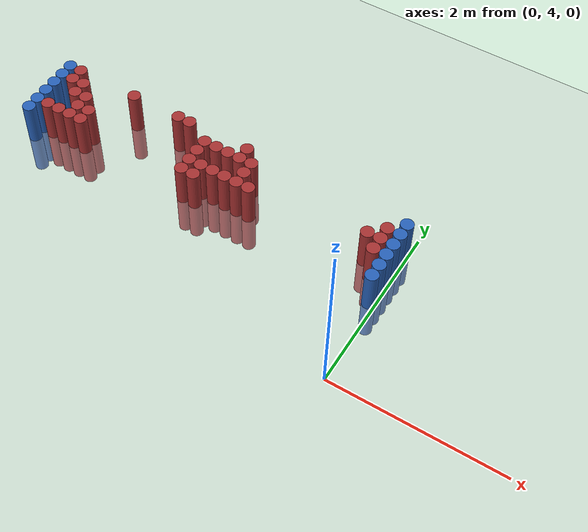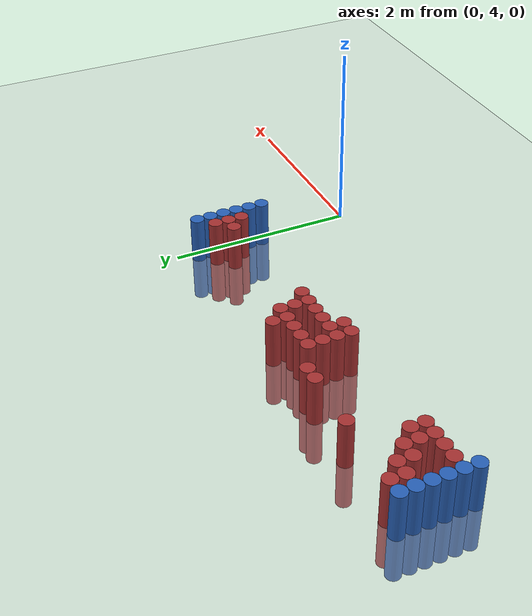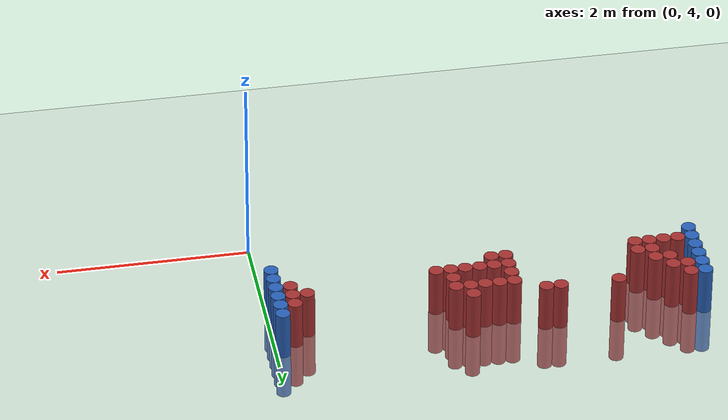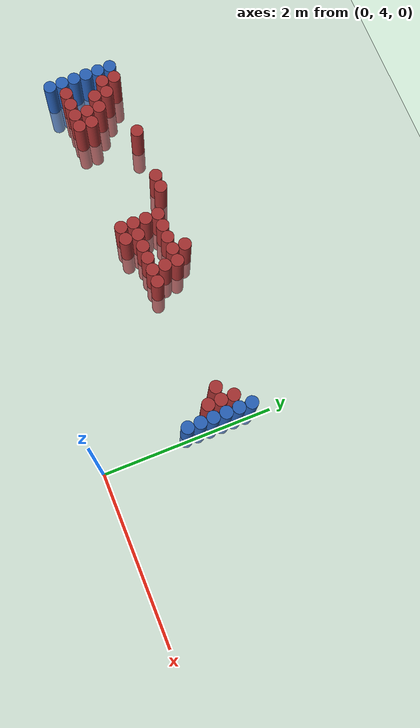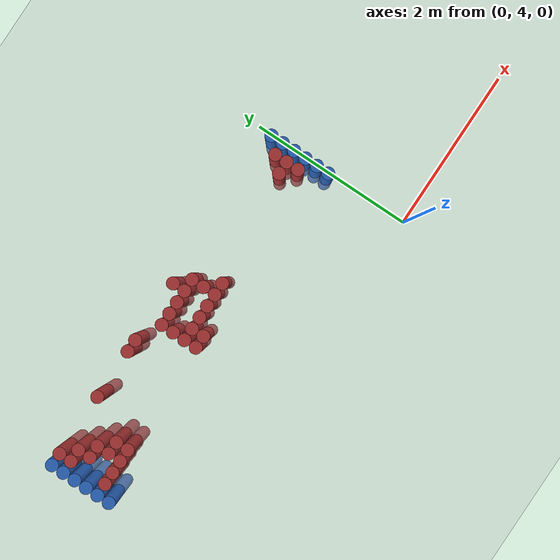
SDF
<sdf version="1.6">
 <world name="default">
  <model name="ground_plane">
   <static>1</static>
   <link name="link">
    <collision name="collision">
     <geometry><plane><normal>0 0 1</normal><size>100 100</size></plane></geometry>
     <surface><friction><ode><mu>100</mu><mu2>50</mu2></ode></friction></surface>
    </collision>
    <visual name="visual">
     <cast_shadows>0</cast_shadows>
     <geometry><plane><normal>0 0 1</normal><size>100 100</size></plane></geometry>
     <material>
      <script><uri>file://media/materials/scripts/gazebo.material</uri><name>Gazebo/Grey</name></script>
     </material>
    </visual>
   </link>
  </model>
  <model name="unit_cylinder_94">
   <static>1</static>
   <pose>-0.075000 5.025000 0.000000 0.000000 0.000000 0.000000</pose>
   <link name="link">
    <inertial>
     <mass>1</mass>
     <inertia><ixx>0.145833</ixx><ixy>0</ixy><ixz>0</ixz><iyy>0.145833</iyy><iyz>0</iyz><izz>0.125</izz></inertia>
    </inertial>
    <collision name="collision">
     <geometry><cylinder><radius>0.075000</radius><length>1</length></cylinder></geometry>
    </collision>
    <visual name="visual">
     <geometry><cylinder><radius>0.075000</radius><length>1</length></cylinder></geometry>
     <material>
      <ambient>0.152000 0.379000 0.720000 1</ambient>
      <diffuse>0.152000 0.379000 0.720000 1</diffuse>
     </material>
     <material>
      <script><name>Gazebo/Grey</name><uri>file://media/materials/scripts/gazebo.material</uri></script>
     </material>
    </visual>
   </link>
  </model>
  <model name="unit_cylinder_95">
   <static>1</static>
   <pose>-4.425000 5.025000 0.000000 0.000000 0.000000 0.000000</pose>
   <link name="link">
    <inertial>
     <mass>1</mass>
     <inertia><ixx>0.145833</ixx><ixy>0</ixy><ixz>0</ixz><iyy>0.145833</iyy><iyz>0</iyz><izz>0.125</izz></inertia>
    </inertial>
    <collision name="collision">
     <geometry><cylinder><radius>0.075000</radius><length>1</length></cylinder></geometry>
    </collision>
    <visual name="visual">
     <geometry><cylinder><radius>0.075000</radius><length>1</length></cylinder></geometry>
     <material>
      <ambient>0.152000 0.379000 0.720000 1</ambient>
      <diffuse>0.152000 0.379000 0.720000 1</diffuse>
     </material>
     <material>
      <script><name>Gazebo/Grey</name><uri>file://media/materials/scripts/gazebo.material</uri></script>
     </material>
    </visual>
   </link>
  </model>
  <model name="unit_cylinder_96">
   <static>1</static>
   <pose>-4.425000 5.175000 0.000000 0.000000 0.000000 0.000000</pose>
   <link name="link">
    <inertial>
     <mass>1</mass>
     <inertia><ixx>0.145833</ixx><ixy>0</ixy><ixz>0</ixz><iyy>0.145833</iyy><iyz>0</iyz><izz>0.125</izz></inertia>
    </inertial>
    <collision name="collision">
     <geometry><cylinder><radius>0.075000</radius><length>1</length></cylinder></geometry>
    </collision>
    <visual name="visual">
     <geometry><cylinder><radius>0.075000</radius><length>1</length></cylinder></geometry>
     <material>
      <ambient>0.152000 0.379000 0.720000 1</ambient>
      <diffuse>0.152000 0.379000 0.720000 1</diffuse>
     </material>
     <material>
      <script><name>Gazebo/Grey</name><uri>file://media/materials/scripts/gazebo.material</uri></script>
     </material>
    </visual>
   </link>
  </model>
  <model name="unit_cylinder_97">
   <static>1</static>
   <pose>-4.425000 5.325000 0.000000 0.000000 0.000000 0.000000</pose>
   <link name="link">
    <inertial>
     <mass>1</mass>
     <inertia><ixx>0.145833</ixx><ixy>0</ixy><ixz>0</ixz><iyy>0.145833</iyy><iyz>0</iyz><izz>0.125</izz></inertia>
    </inertial>
    <collision name="collision">
     <geometry><cylinder><radius>0.075000</radius><length>1</length></cylinder></geometry>
    </collision>
    <visual name="visual">
     <geometry><cylinder><radius>0.075000</radius><length>1</length></cylinder></geometry>
     <material>
      <ambient>0.152000 0.379000 0.720000 1</ambient>
      <diffuse>0.152000 0.379000 0.720000 1</diffuse>
     </material>
     <material>
      <script><name>Gazebo/Grey</name><uri>file://media/materials/scripts/gazebo.material</uri></script>
     </material>
    </visual>
   </link>
  </model>
  <model name="unit_cylinder_98">
   <static>1</static>
   <pose>-4.425000 5.475000 0.000000 0.000000 0.000000 0.000000</pose>
   <link name="link">
    <inertial>
     <mass>1</mass>
     <inertia><ixx>0.145833</ixx><ixy>0</ixy><ixz>0</ixz><iyy>0.145833</iyy><iyz>0</iyz><izz>0.125</izz></inertia>
    </inertial>
    <collision name="collision">
     <geometry><cylinder><radius>0.075000</radius><length>1</length></cylinder></geometry>
    </collision>
    <visual name="visual">
     <geometry><cylinder><radius>0.075000</radius><length>1</length></cylinder></geometry>
     <material>
      <ambient>0.152000 0.379000 0.720000 1</ambient>
      <diffuse>0.152000 0.379000 0.720000 1</diffuse>
     </material>
     <material>
      <script><name>Gazebo/Grey</name><uri>file://media/materials/scripts/gazebo.material</uri></script>
     </material>
    </visual>
   </link>
  </model>
  <model name="unit_cylinder_99">
   <static>1</static>
   <pose>-4.425000 5.625000 0.000000 0.000000 0.000000 0.000000</pose>
   <link name="link">
    <inertial>
     <mass>1</mass>
     <inertia><ixx>0.145833</ixx><ixy>0</ixy><ixz>0</ixz><iyy>0.145833</iyy><iyz>0</iyz><izz>0.125</izz></inertia>
    </inertial>
    <collision name="collision">
     <geometry><cylinder><radius>0.075000</radius><length>1</length></cylinder></geometry>
    </collision>
    <visual name="visual">
     <geometry><cylinder><radius>0.075000</radius><length>1</length></cylinder></geometry>
     <material>
      <ambient>0.152000 0.379000 0.720000 1</ambient>
      <diffuse>0.152000 0.379000 0.720000 1</diffuse>
     </material>
     <material>
      <script><name>Gazebo/Grey</name><uri>file://media/materials/scripts/gazebo.material</uri></script>
     </material>
    </visual>
   </link>
  </model>
  <model name="unit_cylinder_100">
   <static>1</static>
   <pose>-4.425000 5.775000 0.000000 0.000000 0.000000 0.000000</pose>
   <link name="link">
    <inertial>
     <mass>1</mass>
     <inertia><ixx>0.145833</ixx><ixy>0</ixy><ixz>0</ixz><iyy>0.145833</iyy><iyz>0</iyz><izz>0.125</izz></inertia>
    </inertial>
    <collision name="collision">
     <geometry><cylinder><radius>0.075000</radius><length>1</length></cylinder></geometry>
    </collision>
    <visual name="visual">
     <geometry><cylinder><radius>0.075000</radius><length>1</length></cylinder></geometry>
     <material>
      <ambient>0.152000 0.379000 0.720000 1</ambient>
      <diffuse>0.152000 0.379000 0.720000 1</diffuse>
     </material>
     <material>
      <script><name>Gazebo/Grey</name><uri>file://media/materials/scripts/gazebo.material</uri></script>
     </material>
    </visual>
   </link>
  </model>
  <model name="unit_cylinder_126">
   <static>1</static>
   <pose>-4.275000 5.175000 0.000000 0.000000 0.000000 0.000000</pose>
   <link name="link">
    <inertial>
     <mass>1</mass>
     <inertia><ixx>0.145833</ixx><ixy>0</ixy><ixz>0</ixz><iyy>0.145833</iyy><iyz>0</iyz><izz>0.125</izz></inertia>
    </inertial>
    <collision name="collision">
     <geometry><cylinder><radius>0.075000</radius><length>1</length></cylinder></geometry>
    </collision>
    <visual name="visual">
     <geometry><cylinder><radius>0.075000</radius><length>1</length></cylinder></geometry>
     <material>
      <ambient>0.648000 0.192000 0.192000 1</ambient>
      <diffuse>0.648000 0.192000 0.192000 1</diffuse>
     </material>
     <material>
      <script><name>Gazebo/Grey</name><uri>file://media/materials/scripts/gazebo.material</uri></script>
     </material>
    </visual>
   </link>
  </model>
  <model name="unit_cylinder_127">
   <static>1</static>
   <pose>-4.275000 5.625000 0.000000 0.000000 0.000000 0.000000</pose>
   <link name="link">
    <inertial>
     <mass>1</mass>
     <inertia><ixx>0.145833</ixx><ixy>0</ixy><ixz>0</ixz><iyy>0.145833</iyy><iyz>0</iyz><izz>0.125</izz></inertia>
    </inertial>
    <collision name="collision">
     <geometry><cylinder><radius>0.075000</radius><length>1</length></cylinder></geometry>
    </collision>
    <visual name="visual">
     <geometry><cylinder><radius>0.075000</radius><length>1</length></cylinder></geometry>
     <material>
      <ambient>0.648000 0.192000 0.192000 1</ambient>
      <diffuse>0.648000 0.192000 0.192000 1</diffuse>
     </material>
     <material>
      <script><name>Gazebo/Grey</name><uri>file://media/materials/scripts/gazebo.material</uri></script>
     </material>
    </visual>
   </link>
  </model>
  <model name="unit_cylinder_128">
   <static>1</static>
   <pose>-4.275000 5.775000 0.000000 0.000000 0.000000 0.000000</pose>
   <link name="link">
    <inertial>
     <mass>1</mass>
     <inertia><ixx>0.145833</ixx><ixy>0</ixy><ixz>0</ixz><iyy>0.145833</iyy><iyz>0</iyz><izz>0.125</izz></inertia>
    </inertial>
    <collision name="collision">
     <geometry><cylinder><radius>0.075000</radius><length>1</length></cylinder></geometry>
    </collision>
    <visual name="visual">
     <geometry><cylinder><radius>0.075000</radius><length>1</length></cylinder></geometry>
     <material>
      <ambient>0.648000 0.192000 0.192000 1</ambient>
      <diffuse>0.648000 0.192000 0.192000 1</diffuse>
     </material>
     <material>
      <script><name>Gazebo/Grey</name><uri>file://media/materials/scripts/gazebo.material</uri></script>
     </material>
    </visual>
   </link>
  </model>
  <model name="unit_cylinder_133">
   <static>1</static>
   <pose>-4.125000 5.175000 0.000000 0.000000 0.000000 0.000000</pose>
   <link name="link">
    <inertial>
     <mass>1</mass>
     <inertia><ixx>0.145833</ixx><ixy>0</ixy><ixz>0</ixz><iyy>0.145833</iyy><iyz>0</iyz><izz>0.125</izz></inertia>
    </inertial>
    <collision name="collision">
     <geometry><cylinder><radius>0.075000</radius><length>1</length></cylinder></geometry>
    </collision>
    <visual name="visual">
     <geometry><cylinder><radius>0.075000</radius><length>1</length></cylinder></geometry>
     <material>
      <ambient>0.648000 0.192000 0.192000 1</ambient>
      <diffuse>0.648000 0.192000 0.192000 1</diffuse>
     </material>
     <material>
      <script><name>Gazebo/Grey</name><uri>file://media/materials/scripts/gazebo.material</uri></script>
     </material>
    </visual>
   </link>
  </model>
  <model name="unit_cylinder_134">
   <static>1</static>
   <pose>-4.125000 5.475000 0.000000 0.000000 0.000000 0.000000</pose>
   <link name="link">
    <inertial>
     <mass>1</mass>
     <inertia><ixx>0.145833</ixx><ixy>0</ixy><ixz>0</ixz><iyy>0.145833</iyy><iyz>0</iyz><izz>0.125</izz></inertia>
    </inertial>
    <collision name="collision">
     <geometry><cylinder><radius>0.075000</radius><length>1</length></cylinder></geometry>
    </collision>
    <visual name="visual">
     <geometry><cylinder><radius>0.075000</radius><length>1</length></cylinder></geometry>
     <material>
      <ambient>0.648000 0.192000 0.192000 1</ambient>
      <diffuse>0.648000 0.192000 0.192000 1</diffuse>
     </material>
     <material>
      <script><name>Gazebo/Grey</name><uri>file://media/materials/scripts/gazebo.material</uri></script>
     </material>
    </visual>
   </link>
  </model>
  <model name="unit_cylinder_135">
   <static>1</static>
   <pose>-4.125000 5.625000 0.000000 0.000000 0.000000 0.000000</pose>
   <link name="link">
    <inertial>
     <mass>1</mass>
     <inertia><ixx>0.145833</ixx><ixy>0</ixy><ixz>0</ixz><iyy>0.145833</iyy><iyz>0</iyz><izz>0.125</izz></inertia>
    </inertial>
    <collision name="collision">
     <geometry><cylinder><radius>0.075000</radius><length>1</length></cylinder></geometry>
    </collision>
    <visual name="visual">
     <geometry><cylinder><radius>0.075000</radius><length>1</length></cylinder></geometry>
     <material>
      <ambient>0.648000 0.192000 0.192000 1</ambient>
      <diffuse>0.648000 0.192000 0.192000 1</diffuse>
     </material>
     <material>
      <script><name>Gazebo/Grey</name><uri>file://media/materials/scripts/gazebo.material</uri></script>
     </material>
    </visual>
   </link>
  </model>
  <model name="unit_cylinder_137">
   <static>1</static>
   <pose>-3.975000 5.175000 0.000000 0.000000 0.000000 0.000000</pose>
   <link name="link">
    <inertial>
     <mass>1</mass>
     <inertia><ixx>0.145833</ixx><ixy>0</ixy><ixz>0</ixz><iyy>0.145833</iyy><iyz>0</iyz><izz>0.125</izz></inertia>
    </inertial>
    <collision name="collision">
     <geometry><cylinder><radius>0.075000</radius><length>1</length></cylinder></geometry>
    </collision>
    <visual name="visual">
     <geometry><cylinder><radius>0.075000</radius><length>1</length></cylinder></geometry>
     <material>
      <ambient>0.648000 0.192000 0.192000 1</ambient>
      <diffuse>0.648000 0.192000 0.192000 1</diffuse>
     </material>
     <material>
      <script><name>Gazebo/Grey</name><uri>file://media/materials/scripts/gazebo.material</uri></script>
     </material>
    </visual>
   </link>
  </model>
  <model name="unit_cylinder_138">
   <static>1</static>
   <pose>-3.975000 5.325000 0.000000 0.000000 0.000000 0.000000</pose>
   <link name="link">
    <inertial>
     <mass>1</mass>
     <inertia><ixx>0.145833</ixx><ixy>0</ixy><ixz>0</ixz><iyy>0.145833</iyy><iyz>0</iyz><izz>0.125</izz></inertia>
    </inertial>
    <collision name="collision">
     <geometry><cylinder><radius>0.075000</radius><length>1</length></cylinder></geometry>
    </collision>
    <visual name="visual">
     <geometry><cylinder><radius>0.075000</radius><length>1</length></cylinder></geometry>
     <material>
      <ambient>0.648000 0.192000 0.192000 1</ambient>
      <diffuse>0.648000 0.192000 0.192000 1</diffuse>
     </material>
     <material>
      <script><name>Gazebo/Grey</name><uri>file://media/materials/scripts/gazebo.material</uri></script>
     </material>
    </visual>
   </link>
  </model>
  <model name="unit_cylinder_139">
   <static>1</static>
   <pose>-3.975000 5.475000 0.000000 0.000000 0.000000 0.000000</pose>
   <link name="link">
    <inertial>
     <mass>1</mass>
     <inertia><ixx>0.145833</ixx><ixy>0</ixy><ixz>0</ixz><iyy>0.145833</iyy><iyz>0</iyz><izz>0.125</izz></inertia>
    </inertial>
    <collision name="collision">
     <geometry><cylinder><radius>0.075000</radius><length>1</length></cylinder></geometry>
    </collision>
    <visual name="visual">
     <geometry><cylinder><radius>0.075000</radius><length>1</length></cylinder></geometry>
     <material>
      <ambient>0.648000 0.192000 0.192000 1</ambient>
      <diffuse>0.648000 0.192000 0.192000 1</diffuse>
     </material>
     <material>
      <script><name>Gazebo/Grey</name><uri>file://media/materials/scripts/gazebo.material</uri></script>
     </material>
    </visual>
   </link>
  </model>
  <model name="unit_cylinder_143">
   <static>1</static>
   <pose>-3.825000 5.175000 0.000000 0.000000 0.000000 0.000000</pose>
   <link name="link">
    <inertial>
     <mass>1</mass>
     <inertia><ixx>0.145833</ixx><ixy>0</ixy><ixz>0</ixz><iyy>0.145833</iyy><iyz>0</iyz><izz>0.125</izz></inertia>
    </inertial>
    <collision name="collision">
     <geometry><cylinder><radius>0.075000</radius><length>1</length></cylinder></geometry>
    </collision>
    <visual name="visual">
     <geometry><cylinder><radius>0.075000</radius><length>1</length></cylinder></geometry>
     <material>
      <ambient>0.648000 0.192000 0.192000 1</ambient>
      <diffuse>0.648000 0.192000 0.192000 1</diffuse>
     </material>
     <material>
      <script><name>Gazebo/Grey</name><uri>file://media/materials/scripts/gazebo.material</uri></script>
     </material>
    </visual>
   </link>
  </model>
  <model name="unit_cylinder_144">
   <static>1</static>
   <pose>-3.825000 5.325000 0.000000 0.000000 0.000000 0.000000</pose>
   <link name="link">
    <inertial>
     <mass>1</mass>
     <inertia><ixx>0.145833</ixx><ixy>0</ixy><ixz>0</ixz><iyy>0.145833</iyy><iyz>0</iyz><izz>0.125</izz></inertia>
    </inertial>
    <collision name="collision">
     <geometry><cylinder><radius>0.075000</radius><length>1</length></cylinder></geometry>
    </collision>
    <visual name="visual">
     <geometry><cylinder><radius>0.075000</radius><length>1</length></cylinder></geometry>
     <material>
      <ambient>0.648000 0.192000 0.192000 1</ambient>
      <diffuse>0.648000 0.192000 0.192000 1</diffuse>
     </material>
     <material>
      <script><name>Gazebo/Grey</name><uri>file://media/materials/scripts/gazebo.material</uri></script>
     </material>
    </visual>
   </link>
  </model>
  <model name="unit_cylinder_145">
   <static>1</static>
   <pose>-3.525000 5.775000 0.000000 0.000000 0.000000 0.000000</pose>
   <link name="link">
    <inertial>
     <mass>1</mass>
     <inertia><ixx>0.145833</ixx><ixy>0</ixy><ixz>0</ixz><iyy>0.145833</iyy><iyz>0</iyz><izz>0.125</izz></inertia>
    </inertial>
    <collision name="collision">
     <geometry><cylinder><radius>0.075000</radius><length>1</length></cylinder></geometry>
    </collision>
    <visual name="visual">
     <geometry><cylinder><radius>0.075000</radius><length>1</length></cylinder></geometry>
     <material>
      <ambient>0.648000 0.192000 0.192000 1</ambient>
      <diffuse>0.648000 0.192000 0.192000 1</diffuse>
     </material>
     <material>
      <script><name>Gazebo/Grey</name><uri>file://media/materials/scripts/gazebo.material</uri></script>
     </material>
    </visual>
   </link>
  </model>
  <model name="unit_cylinder_161">
   <static>1</static>
   <pose>-2.925000 5.775000 0.000000 0.000000 0.000000 0.000000</pose>
   <link name="link">
    <inertial>
     <mass>1</mass>
     <inertia><ixx>0.145833</ixx><ixy>0</ixy><ixz>0</ixz><iyy>0.145833</iyy><iyz>0</iyz><izz>0.125</izz></inertia>
    </inertial>
    <collision name="collision">
     <geometry><cylinder><radius>0.075000</radius><length>1</length></cylinder></geometry>
    </collision>
    <visual name="visual">
     <geometry><cylinder><radius>0.075000</radius><length>1</length></cylinder></geometry>
     <material>
      <ambient>0.648000 0.192000 0.192000 1</ambient>
      <diffuse>0.648000 0.192000 0.192000 1</diffuse>
     </material>
     <material>
      <script><name>Gazebo/Grey</name><uri>file://media/materials/scripts/gazebo.material</uri></script>
     </material>
    </visual>
   </link>
  </model>
  <model name="unit_cylinder_168">
   <static>1</static>
   <pose>-2.775000 5.775000 0.000000 0.000000 0.000000 0.000000</pose>
   <link name="link">
    <inertial>
     <mass>1</mass>
     <inertia><ixx>0.145833</ixx><ixy>0</ixy><ixz>0</ixz><iyy>0.145833</iyy><iyz>0</iyz><izz>0.125</izz></inertia>
    </inertial>
    <collision name="collision">
     <geometry><cylinder><radius>0.075000</radius><length>1</length></cylinder></geometry>
    </collision>
    <visual name="visual">
     <geometry><cylinder><radius>0.075000</radius><length>1</length></cylinder></geometry>
     <material>
      <ambient>0.648000 0.192000 0.192000 1</ambient>
      <diffuse>0.648000 0.192000 0.192000 1</diffuse>
     </material>
     <material>
      <script><name>Gazebo/Grey</name><uri>file://media/materials/scripts/gazebo.material</uri></script>
     </material>
    </visual>
   </link>
  </model>
  <model name="unit_cylinder_178">
   <static>1</static>
   <pose>-2.475000 5.175000 0.000000 0.000000 0.000000 0.000000</pose>
   <link name="link">
    <inertial>
     <mass>1</mass>
     <inertia><ixx>0.145833</ixx><ixy>0</ixy><ixz>0</ixz><iyy>0.145833</iyy><iyz>0</iyz><izz>0.125</izz></inertia>
    </inertial>
    <collision name="collision">
     <geometry><cylinder><radius>0.075000</radius><length>1</length></cylinder></geometry>
    </collision>
    <visual name="visual">
     <geometry><cylinder><radius>0.075000</radius><length>1</length></cylinder></geometry>
     <material>
      <ambient>0.648000 0.192000 0.192000 1</ambient>
      <diffuse>0.648000 0.192000 0.192000 1</diffuse>
     </material>
     <material>
      <script><name>Gazebo/Grey</name><uri>file://media/materials/scripts/gazebo.material</uri></script>
     </material>
    </visual>
   </link>
  </model>
  <model name="unit_cylinder_179">
   <static>1</static>
   <pose>-2.475000 5.325000 0.000000 0.000000 0.000000 0.000000</pose>
   <link name="link">
    <inertial>
     <mass>1</mass>
     <inertia><ixx>0.145833</ixx><ixy>0</ixy><ixz>0</ixz><iyy>0.145833</iyy><iyz>0</iyz><izz>0.125</izz></inertia>
    </inertial>
    <collision name="collision">
     <geometry><cylinder><radius>0.075000</radius><length>1</length></cylinder></geometry>
    </collision>
    <visual name="visual">
     <geometry><cylinder><radius>0.075000</radius><length>1</length></cylinder></geometry>
     <material>
      <ambient>0.648000 0.192000 0.192000 1</ambient>
      <diffuse>0.648000 0.192000 0.192000 1</diffuse>
     </material>
     <material>
      <script><name>Gazebo/Grey</name><uri>file://media/materials/scripts/gazebo.material</uri></script>
     </material>
    </visual>
   </link>
  </model>
  <model name="unit_cylinder_180">
   <static>1</static>
   <pose>-2.475000 5.475000 0.000000 0.000000 0.000000 0.000000</pose>
   <link name="link">
    <inertial>
     <mass>1</mass>
     <inertia><ixx>0.145833</ixx><ixy>0</ixy><ixz>0</ixz><iyy>0.145833</iyy><iyz>0</iyz><izz>0.125</izz></inertia>
    </inertial>
    <collision name="collision">
     <geometry><cylinder><radius>0.075000</radius><length>1</length></cylinder></geometry>
    </collision>
    <visual name="visual">
     <geometry><cylinder><radius>0.075000</radius><length>1</length></cylinder></geometry>
     <material>
      <ambient>0.648000 0.192000 0.192000 1</ambient>
      <diffuse>0.648000 0.192000 0.192000 1</diffuse>
     </material>
     <material>
      <script><name>Gazebo/Grey</name><uri>file://media/materials/scripts/gazebo.material</uri></script>
     </material>
    </visual>
   </link>
  </model>
  <model name="unit_cylinder_181">
   <static>1</static>
   <pose>-2.475000 5.625000 0.000000 0.000000 0.000000 0.000000</pose>
   <link name="link">
    <inertial>
     <mass>1</mass>
     <inertia><ixx>0.145833</ixx><ixy>0</ixy><ixz>0</ixz><iyy>0.145833</iyy><iyz>0</iyz><izz>0.125</izz></inertia>
    </inertial>
    <collision name="collision">
     <geometry><cylinder><radius>0.075000</radius><length>1</length></cylinder></geometry>
    </collision>
    <visual name="visual">
     <geometry><cylinder><radius>0.075000</radius><length>1</length></cylinder></geometry>
     <material>
      <ambient>0.648000 0.192000 0.192000 1</ambient>
      <diffuse>0.648000 0.192000 0.192000 1</diffuse>
     </material>
     <material>
      <script><name>Gazebo/Grey</name><uri>file://media/materials/scripts/gazebo.material</uri></script>
     </material>
    </visual>
   </link>
  </model>
  <model name="unit_cylinder_182">
   <static>1</static>
   <pose>-2.325000 5.175000 0.000000 0.000000 0.000000 0.000000</pose>
   <link name="link">
    <inertial>
     <mass>1</mass>
     <inertia><ixx>0.145833</ixx><ixy>0</ixy><ixz>0</ixz><iyy>0.145833</iyy><iyz>0</iyz><izz>0.125</izz></inertia>
    </inertial>
    <collision name="collision">
     <geometry><cylinder><radius>0.075000</radius><length>1</length></cylinder></geometry>
    </collision>
    <visual name="visual">
     <geometry><cylinder><radius>0.075000</radius><length>1</length></cylinder></geometry>
     <material>
      <ambient>0.648000 0.192000 0.192000 1</ambient>
      <diffuse>0.648000 0.192000 0.192000 1</diffuse>
     </material>
     <material>
      <script><name>Gazebo/Grey</name><uri>file://media/materials/scripts/gazebo.material</uri></script>
     </material>
    </visual>
   </link>
  </model>
  <model name="unit_cylinder_183">
   <static>1</static>
   <pose>-2.325000 5.325000 0.000000 0.000000 0.000000 0.000000</pose>
   <link name="link">
    <inertial>
     <mass>1</mass>
     <inertia><ixx>0.145833</ixx><ixy>0</ixy><ixz>0</ixz><iyy>0.145833</iyy><iyz>0</iyz><izz>0.125</izz></inertia>
    </inertial>
    <collision name="collision">
     <geometry><cylinder><radius>0.075000</radius><length>1</length></cylinder></geometry>
    </collision>
    <visual name="visual">
     <geometry><cylinder><radius>0.075000</radius><length>1</length></cylinder></geometry>
     <material>
      <ambient>0.648000 0.192000 0.192000 1</ambient>
      <diffuse>0.648000 0.192000 0.192000 1</diffuse>
     </material>
     <material>
      <script><name>Gazebo/Grey</name><uri>file://media/materials/scripts/gazebo.material</uri></script>
     </material>
    </visual>
   </link>
  </model>
  <model name="unit_cylinder_184">
   <static>1</static>
   <pose>-2.325000 5.625000 0.000000 0.000000 0.000000 0.000000</pose>
   <link name="link">
    <inertial>
     <mass>1</mass>
     <inertia><ixx>0.145833</ixx><ixy>0</ixy><ixz>0</ixz><iyy>0.145833</iyy><iyz>0</iyz><izz>0.125</izz></inertia>
    </inertial>
    <collision name="collision">
     <geometry><cylinder><radius>0.075000</radius><length>1</length></cylinder></geometry>
    </collision>
    <visual name="visual">
     <geometry><cylinder><radius>0.075000</radius><length>1</length></cylinder></geometry>
     <material>
      <ambient>0.648000 0.192000 0.192000 1</ambient>
      <diffuse>0.648000 0.192000 0.192000 1</diffuse>
     </material>
     <material>
      <script><name>Gazebo/Grey</name><uri>file://media/materials/scripts/gazebo.material</uri></script>
     </material>
    </visual>
   </link>
  </model>
  <model name="unit_cylinder_185">
   <static>1</static>
   <pose>-2.175000 5.325000 0.000000 0.000000 0.000000 0.000000</pose>
   <link name="link">
    <inertial>
     <mass>1</mass>
     <inertia><ixx>0.145833</ixx><ixy>0</ixy><ixz>0</ixz><iyy>0.145833</iyy><iyz>0</iyz><izz>0.125</izz></inertia>
    </inertial>
    <collision name="collision">
     <geometry><cylinder><radius>0.075000</radius><length>1</length></cylinder></geometry>
    </collision>
    <visual name="visual">
     <geometry><cylinder><radius>0.075000</radius><length>1</length></cylinder></geometry>
     <material>
      <ambient>0.648000 0.192000 0.192000 1</ambient>
      <diffuse>0.648000 0.192000 0.192000 1</diffuse>
     </material>
     <material>
      <script><name>Gazebo/Grey</name><uri>file://media/materials/scripts/gazebo.material</uri></script>
     </material>
    </visual>
   </link>
  </model>
  <model name="unit_cylinder_186">
   <static>1</static>
   <pose>-2.175000 5.625000 0.000000 0.000000 0.000000 0.000000</pose>
   <link name="link">
    <inertial>
     <mass>1</mass>
     <inertia><ixx>0.145833</ixx><ixy>0</ixy><ixz>0</ixz><iyy>0.145833</iyy><iyz>0</iyz><izz>0.125</izz></inertia>
    </inertial>
    <collision name="collision">
     <geometry><cylinder><radius>0.075000</radius><length>1</length></cylinder></geometry>
    </collision>
    <visual name="visual">
     <geometry><cylinder><radius>0.075000</radius><length>1</length></cylinder></geometry>
     <material>
      <ambient>0.648000 0.192000 0.192000 1</ambient>
      <diffuse>0.648000 0.192000 0.192000 1</diffuse>
     </material>
     <material>
      <script><name>Gazebo/Grey</name><uri>file://media/materials/scripts/gazebo.material</uri></script>
     </material>
    </visual>
   </link>
  </model>
  <model name="unit_cylinder_187">
   <static>1</static>
   <pose>-2.025000 5.325000 0.000000 0.000000 0.000000 0.000000</pose>
   <link name="link">
    <inertial>
     <mass>1</mass>
     <inertia><ixx>0.145833</ixx><ixy>0</ixy><ixz>0</ixz><iyy>0.145833</iyy><iyz>0</iyz><izz>0.125</izz></inertia>
    </inertial>
    <collision name="collision">
     <geometry><cylinder><radius>0.075000</radius><length>1</length></cylinder></geometry>
    </collision>
    <visual name="visual">
     <geometry><cylinder><radius>0.075000</radius><length>1</length></cylinder></geometry>
     <material>
      <ambient>0.648000 0.192000 0.192000 1</ambient>
      <diffuse>0.648000 0.192000 0.192000 1</diffuse>
     </material>
     <material>
      <script><name>Gazebo/Grey</name><uri>file://media/materials/scripts/gazebo.material</uri></script>
     </material>
    </visual>
   </link>
  </model>
  <model name="unit_cylinder_188">
   <static>1</static>
   <pose>-2.025000 5.625000 0.000000 0.000000 0.000000 0.000000</pose>
   <link name="link">
    <inertial>
     <mass>1</mass>
     <inertia><ixx>0.145833</ixx><ixy>0</ixy><ixz>0</ixz><iyy>0.145833</iyy><iyz>0</iyz><izz>0.125</izz></inertia>
    </inertial>
    <collision name="collision">
     <geometry><cylinder><radius>0.075000</radius><length>1</length></cylinder></geometry>
    </collision>
    <visual name="visual">
     <geometry><cylinder><radius>0.075000</radius><length>1</length></cylinder></geometry>
     <material>
      <ambient>0.648000 0.192000 0.192000 1</ambient>
      <diffuse>0.648000 0.192000 0.192000 1</diffuse>
     </material>
     <material>
      <script><name>Gazebo/Grey</name><uri>file://media/materials/scripts/gazebo.material</uri></script>
     </material>
    </visual>
   </link>
  </model>
  <model name="unit_cylinder_189">
   <static>1</static>
   <pose>-2.025000 5.775000 0.000000 0.000000 0.000000 0.000000</pose>
   <link name="link">
    <inertial>
     <mass>1</mass>
     <inertia><ixx>0.145833</ixx><ixy>0</ixy><ixz>0</ixz><iyy>0.145833</iyy><iyz>0</iyz><izz>0.125</izz></inertia>
    </inertial>
    <collision name="collision">
     <geometry><cylinder><radius>0.075000</radius><length>1</length></cylinder></geometry>
    </collision>
    <visual name="visual">
     <geometry><cylinder><radius>0.075000</radius><length>1</length></cylinder></geometry>
     <material>
      <ambient>0.648000 0.192000 0.192000 1</ambient>
      <diffuse>0.648000 0.192000 0.192000 1</diffuse>
     </material>
     <material>
      <script><name>Gazebo/Grey</name><uri>file://media/materials/scripts/gazebo.material</uri></script>
     </material>
    </visual>
   </link>
  </model>
  <model name="unit_cylinder_190">
   <static>1</static>
   <pose>-1.875000 5.325000 0.000000 0.000000 0.000000 0.000000</pose>
   <link name="link">
    <inertial>
     <mass>1</mass>
     <inertia><ixx>0.145833</ixx><ixy>0</ixy><ixz>0</ixz><iyy>0.145833</iyy><iyz>0</iyz><izz>0.125</izz></inertia>
    </inertial>
    <collision name="collision">
     <geometry><cylinder><radius>0.075000</radius><length>1</length></cylinder></geometry>
    </collision>
    <visual name="visual">
     <geometry><cylinder><radius>0.075000</radius><length>1</length></cylinder></geometry>
     <material>
      <ambient>0.648000 0.192000 0.192000 1</ambient>
      <diffuse>0.648000 0.192000 0.192000 1</diffuse>
     </material>
     <material>
      <script><name>Gazebo/Grey</name><uri>file://media/materials/scripts/gazebo.material</uri></script>
     </material>
    </visual>
   </link>
  </model>
  <model name="unit_cylinder_191">
   <static>1</static>
   <pose>-1.875000 5.475000 0.000000 0.000000 0.000000 0.000000</pose>
   <link name="link">
    <inertial>
     <mass>1</mass>
     <inertia><ixx>0.145833</ixx><ixy>0</ixy><ixz>0</ixz><iyy>0.145833</iyy><iyz>0</iyz><izz>0.125</izz></inertia>
    </inertial>
    <collision name="collision">
     <geometry><cylinder><radius>0.075000</radius><length>1</length></cylinder></geometry>
    </collision>
    <visual name="visual">
     <geometry><cylinder><radius>0.075000</radius><length>1</length></cylinder></geometry>
     <material>
      <ambient>0.648000 0.192000 0.192000 1</ambient>
      <diffuse>0.648000 0.192000 0.192000 1</diffuse>
     </material>
     <material>
      <script><name>Gazebo/Grey</name><uri>file://media/materials/scripts/gazebo.material</uri></script>
     </material>
    </visual>
   </link>
  </model>
  <model name="unit_cylinder_192">
   <static>1</static>
   <pose>-1.875000 5.625000 0.000000 0.000000 0.000000 0.000000</pose>
   <link name="link">
    <inertial>
     <mass>1</mass>
     <inertia><ixx>0.145833</ixx><ixy>0</ixy><ixz>0</ixz><iyy>0.145833</iyy><iyz>0</iyz><izz>0.125</izz></inertia>
    </inertial>
    <collision name="collision">
     <geometry><cylinder><radius>0.075000</radius><length>1</length></cylinder></geometry>
    </collision>
    <visual name="visual">
     <geometry><cylinder><radius>0.075000</radius><length>1</length></cylinder></geometry>
     <material>
      <ambient>0.648000 0.192000 0.192000 1</ambient>
      <diffuse>0.648000 0.192000 0.192000 1</diffuse>
     </material>
     <material>
      <script><name>Gazebo/Grey</name><uri>file://media/materials/scripts/gazebo.material</uri></script>
     </material>
    </visual>
   </link>
  </model>
  <model name="unit_cylinder_193">
   <static>1</static>
   <pose>-1.725000 5.325000 0.000000 0.000000 0.000000 0.000000</pose>
   <link name="link">
    <inertial>
     <mass>1</mass>
     <inertia><ixx>0.145833</ixx><ixy>0</ixy><ixz>0</ixz><iyy>0.145833</iyy><iyz>0</iyz><izz>0.125</izz></inertia>
    </inertial>
    <collision name="collision">
     <geometry><cylinder><radius>0.075000</radius><length>1</length></cylinder></geometry>
    </collision>
    <visual name="visual">
     <geometry><cylinder><radius>0.075000</radius><length>1</length></cylinder></geometry>
     <material>
      <ambient>0.648000 0.192000 0.192000 1</ambient>
      <diffuse>0.648000 0.192000 0.192000 1</diffuse>
     </material>
     <material>
      <script><name>Gazebo/Grey</name><uri>file://media/materials/scripts/gazebo.material</uri></script>
     </material>
    </visual>
   </link>
  </model>
  <model name="unit_cylinder_230">
   <static>1</static>
   <pose>-0.375000 5.475000 0.000000 0.000000 0.000000 0.000000</pose>
   <link name="link">
    <inertial>
     <mass>1</mass>
     <inertia><ixx>0.145833</ixx><ixy>0</ixy><ixz>0</ixz><iyy>0.145833</iyy><iyz>0</iyz><izz>0.125</izz></inertia>
    </inertial>
    <collision name="collision">
     <geometry><cylinder><radius>0.075000</radius><length>1</length></cylinder></geometry>
    </collision>
    <visual name="visual">
     <geometry><cylinder><radius>0.075000</radius><length>1</length></cylinder></geometry>
     <material>
      <ambient>0.648000 0.192000 0.192000 1</ambient>
      <diffuse>0.648000 0.192000 0.192000 1</diffuse>
     </material>
     <material>
      <script><name>Gazebo/Grey</name><uri>file://media/materials/scripts/gazebo.material</uri></script>
     </material>
    </visual>
   </link>
  </model>
  <model name="unit_cylinder_236">
   <static>1</static>
   <pose>-0.225000 5.325000 0.000000 0.000000 0.000000 0.000000</pose>
   <link name="link">
    <inertial>
     <mass>1</mass>
     <inertia><ixx>0.145833</ixx><ixy>0</ixy><ixz>0</ixz><iyy>0.145833</iyy><iyz>0</iyz><izz>0.125</izz></inertia>
    </inertial>
    <collision name="collision">
     <geometry><cylinder><radius>0.075000</radius><length>1</length></cylinder></geometry>
    </collision>
    <visual name="visual">
     <geometry><cylinder><radius>0.075000</radius><length>1</length></cylinder></geometry>
     <material>
      <ambient>0.648000 0.192000 0.192000 1</ambient>
      <diffuse>0.648000 0.192000 0.192000 1</diffuse>
     </material>
     <material>
      <script><name>Gazebo/Grey</name><uri>file://media/materials/scripts/gazebo.material</uri></script>
     </material>
    </visual>
   </link>
  </model>
  <model name="unit_cylinder_237">
   <static>1</static>
   <pose>-0.225000 5.475000 0.000000 0.000000 0.000000 0.000000</pose>
   <link name="link">
    <inertial>
     <mass>1</mass>
     <inertia><ixx>0.145833</ixx><ixy>0</ixy><ixz>0</ixz><iyy>0.145833</iyy><iyz>0</iyz><izz>0.125</izz></inertia>
    </inertial>
    <collision name="collision">
     <geometry><cylinder><radius>0.075000</radius><length>1</length></cylinder></geometry>
    </collision>
    <visual name="visual">
     <geometry><cylinder><radius>0.075000</radius><length>1</length></cylinder></geometry>
     <material>
      <ambient>0.648000 0.192000 0.192000 1</ambient>
      <diffuse>0.648000 0.192000 0.192000 1</diffuse>
     </material>
     <material>
      <script><name>Gazebo/Grey</name><uri>file://media/materials/scripts/gazebo.material</uri></script>
     </material>
    </visual>
   </link>
  </model>
  <model name="unit_cylinder_238">
   <static>1</static>
   <pose>-0.225000 5.625000 0.000000 0.000000 0.000000 0.000000</pose>
   <link name="link">
    <inertial>
     <mass>1</mass>
     <inertia><ixx>0.145833</ixx><ixy>0</ixy><ixz>0</ixz><iyy>0.145833</iyy><iyz>0</iyz><izz>0.125</izz></inertia>
    </inertial>
    <collision name="collision">
     <geometry><cylinder><radius>0.075000</radius><length>1</length></cylinder></geometry>
    </collision>
    <visual name="visual">
     <geometry><cylinder><radius>0.075000</radius><length>1</length></cylinder></geometry>
     <material>
      <ambient>0.648000 0.192000 0.192000 1</ambient>
      <diffuse>0.648000 0.192000 0.192000 1</diffuse>
     </material>
     <material>
      <script><name>Gazebo/Grey</name><uri>file://media/materials/scripts/gazebo.material</uri></script>
     </material>
    </visual>
   </link>
  </model>
  <model name="unit_cylinder_249">
   <static>1</static>
   <pose>-0.075000 5.175000 0.000000 0.000000 0.000000 0.000000</pose>
   <link name="link">
    <inertial>
     <mass>1</mass>
     <inertia><ixx>0.145833</ixx><ixy>0</ixy><ixz>0</ixz><iyy>0.145833</iyy><iyz>0</iyz><izz>0.125</izz></inertia>
    </inertial>
    <collision name="collision">
     <geometry><cylinder><radius>0.075000</radius><length>1</length></cylinder></geometry>
    </collision>
    <visual name="visual">
     <geometry><cylinder><radius>0.075000</radius><length>1</length></cylinder></geometry>
     <material>
      <ambient>0.152000 0.379000 0.720000 1</ambient>
      <diffuse>0.152000 0.379000 0.720000 1</diffuse>
     </material>
     <material>
      <script><name>Gazebo/Grey</name><uri>file://media/materials/scripts/gazebo.material</uri></script>
     </material>
    </visual>
   </link>
  </model>
  <model name="unit_cylinder_250">
   <static>1</static>
   <pose>-0.075000 5.325000 0.000000 0.000000 0.000000 0.000000</pose>
   <link name="link">
    <inertial>
     <mass>1</mass>
     <inertia><ixx>0.145833</ixx><ixy>0</ixy><ixz>0</ixz><iyy>0.145833</iyy><iyz>0</iyz><izz>0.125</izz></inertia>
    </inertial>
    <collision name="collision">
     <geometry><cylinder><radius>0.075000</radius><length>1</length></cylinder></geometry>
    </collision>
    <visual name="visual">
     <geometry><cylinder><radius>0.075000</radius><length>1</length></cylinder></geometry>
     <material>
      <ambient>0.152000 0.379000 0.720000 1</ambient>
      <diffuse>0.152000 0.379000 0.720000 1</diffuse>
     </material>
     <material>
      <script><name>Gazebo/Grey</name><uri>file://media/materials/scripts/gazebo.material</uri></script>
     </material>
    </visual>
   </link>
  </model>
  <model name="unit_cylinder_251">
   <static>1</static>
   <pose>-0.075000 5.475000 0.000000 0.000000 0.000000 0.000000</pose>
   <link name="link">
    <inertial>
     <mass>1</mass>
     <inertia><ixx>0.145833</ixx><ixy>0</ixy><ixz>0</ixz><iyy>0.145833</iyy><iyz>0</iyz><izz>0.125</izz></inertia>
    </inertial>
    <collision name="collision">
     <geometry><cylinder><radius>0.075000</radius><length>1</length></cylinder></geometry>
    </collision>
    <visual name="visual">
     <geometry><cylinder><radius>0.075000</radius><length>1</length></cylinder></geometry>
     <material>
      <ambient>0.152000 0.379000 0.720000 1</ambient>
      <diffuse>0.152000 0.379000 0.720000 1</diffuse>
     </material>
     <material>
      <script><name>Gazebo/Grey</name><uri>file://media/materials/scripts/gazebo.material</uri></script>
     </material>
    </visual>
   </link>
  </model>
  <model name="unit_cylinder_252">
   <static>1</static>
   <pose>-0.075000 5.625000 0.000000 0.000000 0.000000 0.000000</pose>
   <link name="link">
    <inertial>
     <mass>1</mass>
     <inertia><ixx>0.145833</ixx><ixy>0</ixy><ixz>0</ixz><iyy>0.145833</iyy><iyz>0</iyz><izz>0.125</izz></inertia>
    </inertial>
    <collision name="collision">
     <geometry><cylinder><radius>0.075000</radius><length>1</length></cylinder></geometry>
    </collision>
    <visual name="visual">
     <geometry><cylinder><radius>0.075000</radius><length>1</length></cylinder></geometry>
     <material>
      <ambient>0.152000 0.379000 0.720000 1</ambient>
      <diffuse>0.152000 0.379000 0.720000 1</diffuse>
     </material>
     <material>
      <script><name>Gazebo/Grey</name><uri>file://media/materials/scripts/gazebo.material</uri></script>
     </material>
    </visual>
   </link>
  </model>
  <model name="unit_cylinder_253">
   <static>1</static>
   <pose>-0.075000 5.775000 0.000000 0.000000 0.000000 0.000000</pose>
   <link name="link">
    <inertial>
     <mass>1</mass>
     <inertia><ixx>0.145833</ixx><ixy>0</ixy><ixz>0</ixz><iyy>0.145833</iyy><iyz>0</iyz><izz>0.125</izz></inertia>
    </inertial>
    <collision name="collision">
     <geometry><cylinder><radius>0.075000</radius><length>1</length></cylinder></geometry>
    </collision>
    <visual name="visual">
     <geometry><cylinder><radius>0.075000</radius><length>1</length></cylinder></geometry>
     <material>
      <ambient>0.152000 0.379000 0.720000 1</ambient>
      <diffuse>0.152000 0.379000 0.720000 1</diffuse>
     </material>
     <material>
      <script><name>Gazebo/Grey</name><uri>file://media/materials/scripts/gazebo.material</uri></script>
     </material>
    </visual>
   </link>
  </model>
 </world>
</sdf>
